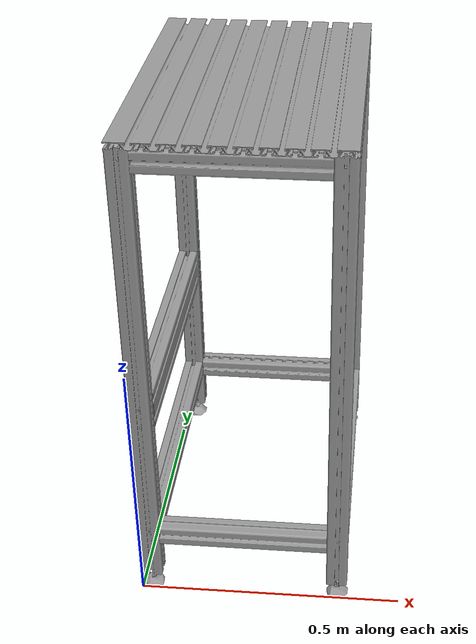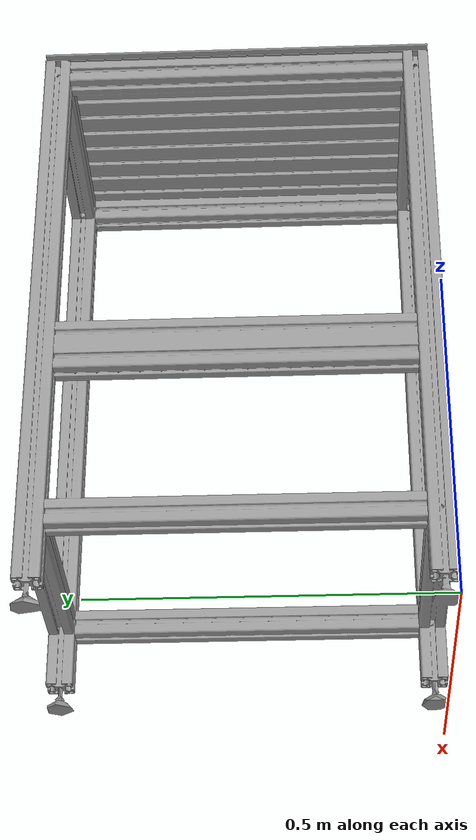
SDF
<?xml version='1.0'?>
<sdf version="1.7">
  <model name="cobottable">
    <pose>0 0 0 0 0 0</pose>
    <static>true</static>
    <link name="cobottable_link">
      <inertial>
        <mass>100</mass>
        <inertia>
          <ixx>1</ixx>
          <ixy>0</ixy>
          <ixz>0</ixz>
          <iyy>1</iyy>
          <iyz>0</iyz>
          <izz>1</izz>
        </inertia>
      </inertial>

      <collision name="cobottable_collision">
        <geometry>
          <mesh>
            <uri>model://cobottable/meshes/collision/cobottable_decimate_origin.dae</uri>
          </mesh>
        </geometry>
      </collision>

      <visual name="cobottable_visual">
        <material>
          <lighting>1</lighting>
          <script>
            <uri>file://media/materials/scripts/gazebo.material</uri>
            <name>Gazebo/Grey</name>
          </script>
        </material>
        <geometry>
          <mesh>
            <uri>model://cobottable/meshes/collision/cobottable_decimate_origin.dae</uri>
          </mesh>
        </geometry>
      </visual>
    </link>
  </model>

</sdf>
